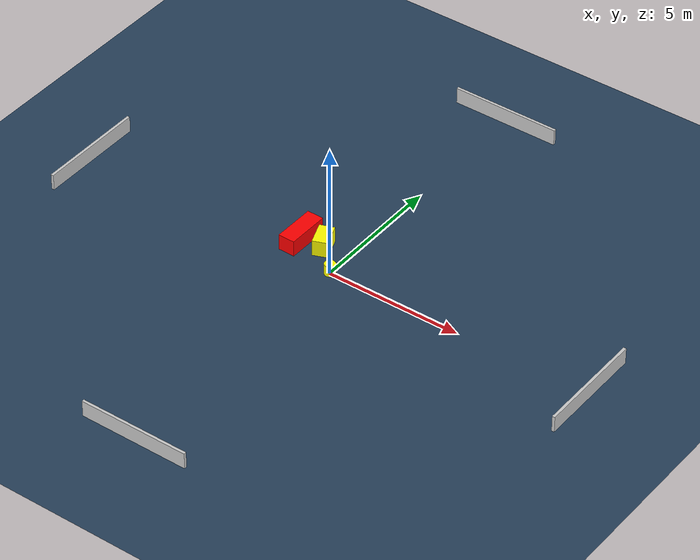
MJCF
<?xml version="1.0" ?>
<mujoco model="generated_environment">
  <option timestep="0.01" integrator="RK4" cone="elliptic"/>
  <default>
    <geom density="1"/>
  </default>
  <asset>
    <texture builtin="gradient" height="3072" name="skybox" rgb1="0.3 0.5 0.7" rgb2="0 0 0" type="skybox" width="512"/>
    <texture builtin="checker" height="300" name="groundplane" rgb1="0.2 0.3 0.4" rgb2="0.1 0.2 0.3" type="2d" width="300"/>
    <material name="groundplane" reflectance="0.2" texrepeat="5 5" texture="groundplane"/>
  </asset>
  <worldbody>
    <light dir="0 0 -1" directional="true" pos="0 0 1.5"/>
    <geom condim="3" friction="0.5 0.005 0.001" material="groundplane" name="floor" pos="0 0 0" size="0 0 0.05" type="plane"/>
    <body name="walls">
      <geom name="wall_1" condim="4" pos="-10.0 0.0 0.3" rgba="0.800000011920929 0.800000011920929 0.800000011920929 1.0" size="0.05 2.0 0.3" type="box"/>
      <geom name="wall_2" condim="4" pos="10.0 0.0 0.3" rgba="0.800000011920929 0.800000011920929 0.800000011920929 1.0" size="0.05 2.0 0.3" type="box"/>
      <geom name="wall_3" condim="4" pos="0.0 -10.0 0.3" rgba="0.800000011920929 0.800000011920929 0.800000011920929 1.0" size="2.0 0.05 0.3" type="box"/>
      <geom name="wall_4" condim="4" pos="0.0 10.0 0.3" rgba="0.800000011920929 0.800000011920929 0.800000011920929 1.0" size="2.0 0.05 0.3" type="box"/>
    </body>
    <body name="robot">
      <joint name="joint_x" type="slide" pos="0 0 0" axis="1 0 0"/>
      <joint name="joint_y" type="slide" pos="0 0 0" axis="0 1 0"/>
      <geom name="robot" type="cylinder" pos="0.0 0.0 0.2" size="0.2 0.2 0.0" mass="5.0" friction="1.0 0.005 0.0001" condim="4" rgba="1.0 1.0 0.0 1.0"/>
    </body>
    <body name="obstacle_1_movable">
      <geom name="obstacle_1_movable" condim="4" pos="-0.9280263963569398 0.891626218794574 0.3" euler="0 0 290.89622912430036" friction="0.0 0.005 0.001" rgba="1.0 1.0 0.0 1.0" size="0.43571620460285204 0.2701406173703742 0.3" type="box" mass="0.1"/>
      <joint type="free"/>
    </body>
    <body name="obstacle_2_static">
      <geom name="obstacle_2_static" condim="4" pos="-1.754798390566624 0.7695628752972141 0.3" euler="0 0 179.25419608846022" friction="0.0 0.005 0.001" rgba="1.0 0.0 0.0 1.0" size="0.30412990978777554 0.7771512586772396 0.3" type="box"/>
    </body>
  </worldbody>
  <actuator>
    <motor name="actuator_x" joint="joint_x" gear="1" ctrlrange="-1 1"/>
    <motor name="actuator_y" joint="joint_y" gear="1" ctrlrange="-1 1"/>
  </actuator>
</mujoco>
